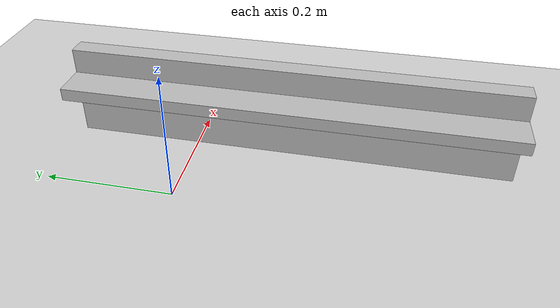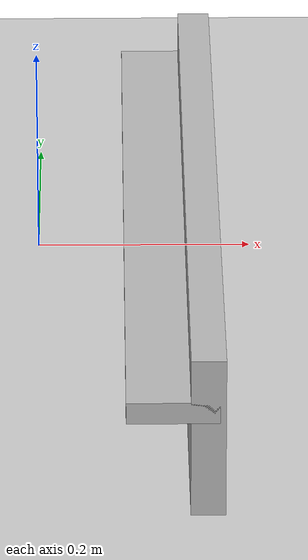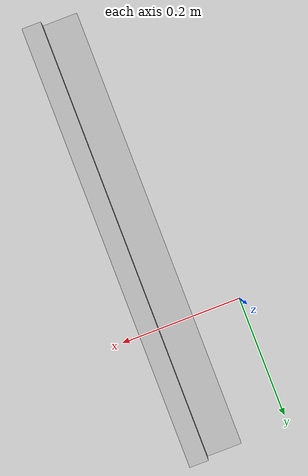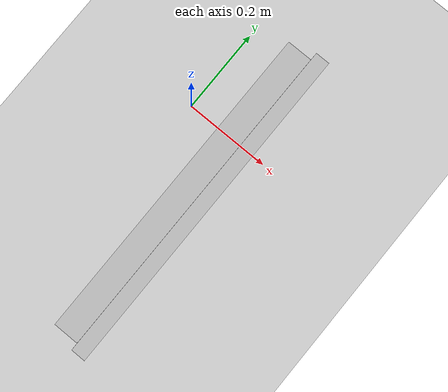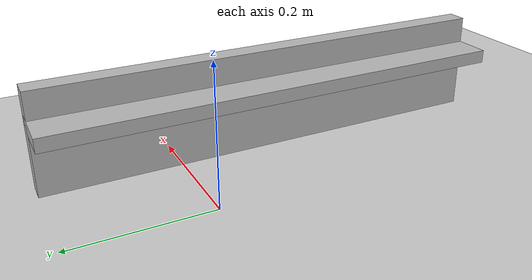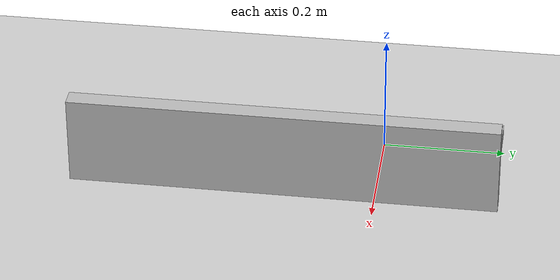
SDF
<?xml version="1.0" ?>
<sdf version="1.4">
  <world name="default">
    <physics type="ode">
      <gravity>0 0 -9.81</gravity>
      <ode>
        <solver>
          <type>quick</type>
          <iters>50</iters>
          <sor>1.4</sor>
        </solver>
        <constraints>
          <cfm>0.0</cfm>
          <erp>0.2</erp>
          <contact_max_correcting_vel>100.0</contact_max_correcting_vel>
          <contact_surface_layer>0.0</contact_surface_layer>
        </constraints>
      </ode>
      <real_time_update_rate>1000</real_time_update_rate>
      <max_step_size>0.001</max_step_size>
    </physics>
    <!-- A global light source -->
    <include>
      <uri>model://sun</uri>
    </include>
    <!-- A ground plane -->
    <include>
      <uri>model://ground_plane</uri>
    </include>

    <model name="box_1_model">
      <pose>0.15 -0.15 0.075 0 0 0</pose>
      <static>true</static>
      <link name="box_1_body">
        <inertial>
          <mass>1.0</mass>
          <inertia>
            <ixx>1.0</ixx>
            <ixy>0.0</ixy>
            <ixz>0.0</ixz>
            <iyy>1.0</iyy>
            <iyz>0.0</iyz>
            <izz>1.0</izz>
          </inertia>
        </inertial>
        <collision name="collision">
          <geometry>
            <box>
              <size>0.03 0.7 0.15</size>
            </box>
          </geometry>
        </collision>
        <visual name="visual">
          <geometry>
            <box>
              <size>0.03 0.7 0.15</size>
            </box>
          </geometry>
        </visual>
      </link>
    </model>

    <model name="box_2_model">
      <pose>0.12 -0.15 0.1 0 0 0</pose>
      <static>true</static>
      <link name="box_1_body">
        <inertial>
          <mass>1.0</mass>
          <inertia>
            <ixx>1.0</ixx>
            <ixy>0.0</ixy>
            <ixz>0.0</ixz>
            <iyy>1.0</iyy>
            <iyz>0.0</iyz>
            <izz>1.0</izz>
          </inertia>
        </inertial>
        <collision name="collision">
          <geometry>
            <box>
              <size>0.08 0.7 0.02</size>
            </box>
          </geometry>
        </collision>
        <visual name="visual">
          <geometry>
            <box>
              <size>0.08 0.7 0.02</size>
            </box>
          </geometry>
        </visual>
      </link>
    </model>
  </world>
</sdf>
